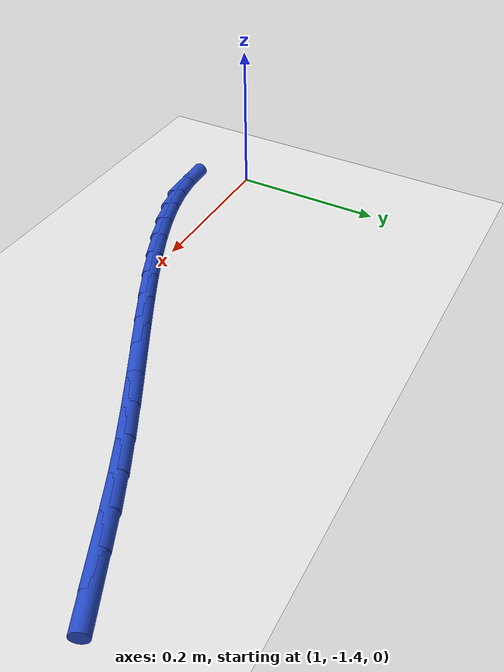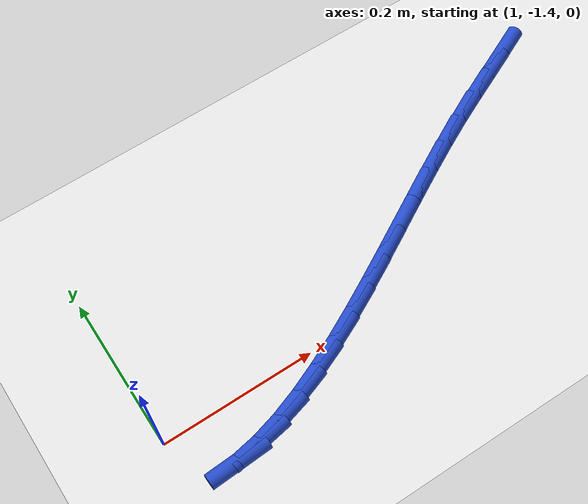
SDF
<sdf version="1.6">
 <world name="default">
  <model name="ground_plane">
   <static>1</static>
   <link name="link">
    <collision name="collision">
     <geometry><plane><normal>0 0 1</normal><size>100 100</size></plane></geometry>
     <surface><friction><ode><mu>100</mu><mu2>50</mu2></ode></friction></surface>
    </collision>
    <visual name="visual">
     <cast_shadows>0</cast_shadows>
     <geometry><plane><normal>0 0 1</normal><size>100 100</size></plane></geometry>
     <material>
      <script><uri>file://media/materials/scripts/gazebo.material</uri><name>Gazebo/WhiteGlow</name></script>
     </material>
    </visual>
   </link>
  </model>
  <model name="line">
   <link name="link_197">
    <pose>1.6326066696590482 -1.194728550724342 0.01 0 1.57 0.43990221097090265</pose>
    <collision name="collision">
     <geometry><cylinder><radius>0.01</radius><length>0.08</length></cylinder></geometry>
    </collision>
    <visual name="visual">
     <material>
      <script><name>Gazebo/Blue</name><uri>file://media/materials/scripts/gazebo.material</uri></script>
     </material>
     <geometry><cylinder><radius>0.01</radius><length>0.08</length></cylinder></geometry>
    </visual>
   </link>
   <link name="link_198">
    <pose>1.599029386339151 -1.2105320708309324 0.01 0 1.57 0.43232456100945305</pose>
    <collision name="collision">
     <geometry><cylinder><radius>0.01</radius><length>0.08</length></cylinder></geometry>
    </collision>
    <visual name="visual">
     <material>
      <script><name>Gazebo/Blue</name><uri>file://media/materials/scripts/gazebo.material</uri></script>
     </material>
     <geometry><cylinder><radius>0.01</radius><length>0.08</length></cylinder></geometry>
    </visual>
   </link>
   <link name="link_199">
    <pose>1.5639755326710443 -1.2267072342978669 0.01 0 1.57 0.445242584992174</pose>
    <collision name="collision">
     <geometry><cylinder><radius>0.01</radius><length>0.08</length></cylinder></geometry>
    </collision>
    <visual name="visual">
     <material>
      <script><name>Gazebo/Blue</name><uri>file://media/materials/scripts/gazebo.material</uri></script>
     </material>
     <geometry><cylinder><radius>0.01</radius><length>0.08</length></cylinder></geometry>
    </visual>
   </link>
   <link name="link_200">
    <pose>1.5278622179084818 -1.2439405425572403 0.01 0 1.57 0.4721704824216655</pose>
    <collision name="collision">
     <geometry><cylinder><radius>0.01</radius><length>0.08</length></cylinder></geometry>
    </collision>
    <visual name="visual">
     <material>
      <script><name>Gazebo/Blue</name><uri>file://media/materials/scripts/gazebo.material</uri></script>
     </material>
     <geometry><cylinder><radius>0.01</radius><length>0.08</length></cylinder></geometry>
    </visual>
   </link>
   <link name="link_201">
    <pose>1.491065356193766 -1.262732679444174 0.01 0 1.57 0.4946117982687244</pose>
    <collision name="collision">
     <geometry><cylinder><radius>0.01</radius><length>0.08</length></cylinder></geometry>
    </collision>
    <visual name="visual">
     <material>
      <script><name>Gazebo/Blue</name><uri>file://media/materials/scripts/gazebo.material</uri></script>
     </material>
     <geometry><cylinder><radius>0.01</radius><length>0.08</length></cylinder></geometry>
    </visual>
   </link>
   <link name="link_202">
    <pose>1.4537944841570016 -1.2828338545648421 0.01 0 1.57 0.5090218877868432</pose>
    <collision name="collision">
     <geometry><cylinder><radius>0.01</radius><length>0.08</length></cylinder></geometry>
    </collision>
    <visual name="visual">
     <material>
      <script><name>Gazebo/Blue</name><uri>file://media/materials/scripts/gazebo.material</uri></script>
     </material>
     <geometry><cylinder><radius>0.01</radius><length>0.08</length></cylinder></geometry>
    </visual>
   </link>
   <link name="link_203">
    <pose>1.416217140921551 -1.3038048405872185 0.01 0 1.57 0.5161310969874878</pose>
    <collision name="collision">
     <geometry><cylinder><radius>0.01</radius><length>0.08</length></cylinder></geometry>
    </collision>
    <visual name="visual">
     <material>
      <script><name>Gazebo/Blue</name><uri>file://media/materials/scripts/gazebo.material</uri></script>
     </material>
     <geometry><cylinder><radius>0.01</radius><length>0.08</length></cylinder></geometry>
    </visual>
   </link>
   <link name="link_204">
    <pose>1.3785008656093898 -1.325206410173045 0.01 0 1.57 0.5162834024323194</pose>
    <collision name="collision">
     <geometry><cylinder><radius>0.01</radius><length>0.08</length></cylinder></geometry>
    </collision>
    <visual name="visual">
     <material>
      <script><name>Gazebo/Blue</name><uri>file://media/materials/scripts/gazebo.material</uri></script>
     </material>
     <geometry><cylinder><radius>0.01</radius><length>0.08</length></cylinder></geometry>
    </visual>
   </link>
   <link name="link_205">
    <pose>1.3408131973424946 -1.3465993359840631 0.01 0 1.57 0.5094684744405173</pose>
    <collision name="collision">
     <geometry><cylinder><radius>0.01</radius><length>0.08</length></cylinder></geometry>
    </collision>
    <visual name="visual">
     <material>
      <script><name>Gazebo/Blue</name><uri>file://media/materials/scripts/gazebo.material</uri></script>
     </material>
     <geometry><cylinder><radius>0.01</radius><length>0.08</length></cylinder></geometry>
    </visual>
   </link>
   <link name="link_206">
    <pose>1.3033216752428451 -1.3675443906820117 0.01 0 1.57 0.4953193462496154</pose>
    <collision name="collision">
     <geometry><cylinder><radius>0.01</radius><length>0.08</length></cylinder></geometry>
    </collision>
    <visual name="visual">
     <material>
      <script><name>Gazebo/Blue</name><uri>file://media/materials/scripts/gazebo.material</uri></script>
     </material>
     <geometry><cylinder><radius>0.01</radius><length>0.08</length></cylinder></geometry>
    </visual>
   </link>
   <link name="link_207">
    <pose>1.2661938384324163 -1.3876023469286336 0.01 0 1.57 0.4730751227776284</pose>
    <collision name="collision">
     <geometry><cylinder><radius>0.01</radius><length>0.08</length></cylinder></geometry>
    </collision>
    <visual name="visual">
     <material>
      <script><name>Gazebo/Blue</name><uri>file://media/materials/scripts/gazebo.material</uri></script>
     </material>
     <geometry><cylinder><radius>0.01</radius><length>0.08</length></cylinder></geometry>
    </visual>
   </link>
   <link name="link_208">
    <pose>1.2295972260331876 -1.4063339773856676 0.01 0 1.57 0.44150549936473416</pose>
    <collision name="collision">
     <geometry><cylinder><radius>0.01</radius><length>0.08</length></cylinder></geometry>
    </collision>
    <visual name="visual">
     <material>
      <script><name>Gazebo/Blue</name><uri>file://media/materials/scripts/gazebo.material</uri></script>
     </material>
     <geometry><cylinder><radius>0.01</radius><length>0.08</length></cylinder></geometry>
    </visual>
   </link>
   <link name="link_209">
    <pose>1.1936993771671338 -1.4233000547148555 0.01 0 1.57 0.398793306304024</pose>
    <collision name="collision">
     <geometry><cylinder><radius>0.01</radius><length>0.08</length></cylinder></geometry>
    </collision>
    <visual name="visual">
     <material>
      <script><name>Gazebo/Blue</name><uri>file://media/materials/scripts/gazebo.material</uri></script>
     </material>
     <geometry><cylinder><radius>0.01</radius><length>0.08</length></cylinder></geometry>
    </visual>
   </link>
   <link name="link_210">
    <pose>1.1586678309562344 -1.4380613515779368 0.01 0 1.57 0.3423781990784252</pose>
    <collision name="collision">
     <geometry><cylinder><radius>0.01</radius><length>0.08</length></cylinder></geometry>
    </collision>
    <visual name="visual">
     <material>
      <script><name>Gazebo/Blue</name><uri>file://media/materials/scripts/gazebo.material</uri></script>
     </material>
     <geometry><cylinder><radius>0.01</radius><length>0.08</length></cylinder></geometry>
    </visual>
   </link>
   <link name="link_211">
    <pose>1.1246701265224655 -1.4501786406366541 0.01 0 1.57 0.26879321343461837</pose>
    <collision name="collision">
     <geometry><cylinder><radius>0.01</radius><length>0.08</length></cylinder></geometry>
    </collision>
    <visual name="visual">
     <material>
      <script><name>Gazebo/Blue</name><uri>file://media/materials/scripts/gazebo.material</uri></script>
     </material>
     <geometry><cylinder><radius>0.01</radius><length>0.08</length></cylinder></geometry>
    </visual>
   </link>
   <link name="link_212">
    <pose>1.0918738029878052 -1.4592126945527464 0.01 0 1.57 0.17360982564501942</pose>
    <collision name="collision">
     <geometry><cylinder><radius>0.01</radius><length>0.08</length></cylinder></geometry>
    </collision>
    <visual name="visual">
     <material>
      <script><name>Gazebo/Blue</name><uri>file://media/materials/scripts/gazebo.material</uri></script>
     </material>
     <geometry><cylinder><radius>0.01</radius><length>0.08</length></cylinder></geometry>
    </visual>
   </link>
   <link name="link_213">
    <pose>1.0604463994742295 -1.4647242859879546 0.01 0 1.57 0.05180548337822393</pose>
    <collision name="collision">
     <geometry><cylinder><radius>0.01</radius><length>0.08</length></cylinder></geometry>
    </collision>
    <visual name="visual">
     <material>
      <script><name>Gazebo/Blue</name><uri>file://media/materials/scripts/gazebo.material</uri></script>
     </material>
     <geometry><cylinder><radius>0.01</radius><length>0.08</length></cylinder></geometry>
    </visual>
   </link>
  </model>
 </world>
</sdf>
